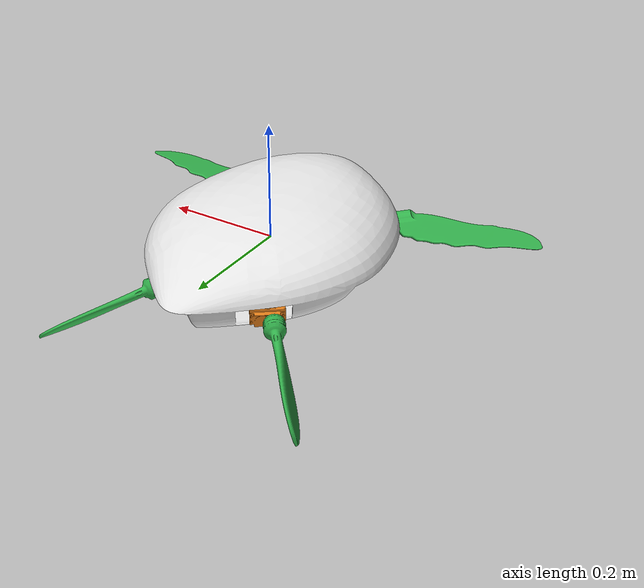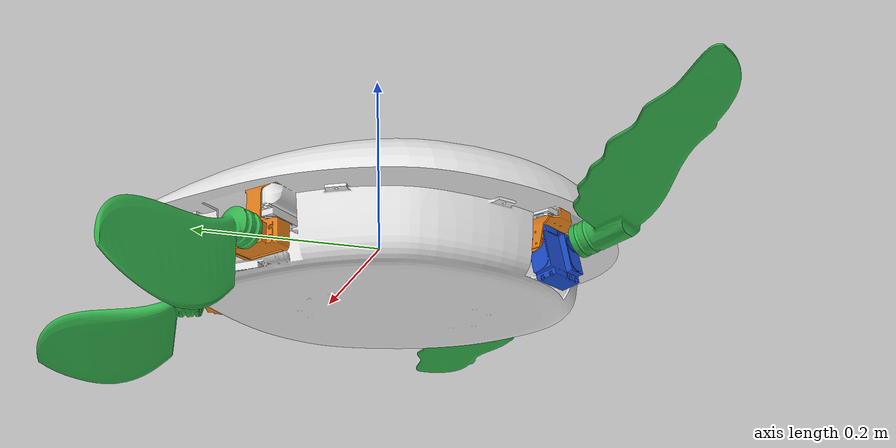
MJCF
<mujoco model="turtle">
  <compiler angle="radian" meshdir="./assets/" />
  <option timestep="0.001" iterations="100" solver="Newton" tolerance="1e-10" />
  <size njmax="500" nconmax="100" />

  <default>
    <default class="turtle">
      <geom friction="0.6" margin="0.001" condim="1" />
      <joint damping="10.0" armature="0.1" frictionloss="0.5" />
      <default class="leg_joint">
        <joint axis="0 0 1" range="-3.14 3.14" />
      </default>
      <default class="thigh_joint">
        <joint range="-3.14 3.14" />
      </default>
      <default class="calf_joint">
        <joint range="-3.14 3.14" />
      </default>
      <default class="visual">
        <geom type="mesh" contype="0" conaffinity="0" group="1" density="0" />
      </default>
      <default class="collision">
        <geom group="3" />
        <default class="capsule_small">
          <geom type="box" size="0.02 0.02 0.02" />
        </default>
        <default class="capsule_large">
          <geom type="box" size="0.02 0.02 0.02" />
        </default>
        <default class="base_box">
          <geom type="box" size="0.15 0.15 0.069" />
        </default>
        <default class="foot">
          <geom type="box" size="0.05 0.07 0.001" pos="0 -0.07 0" />
        </default>
      </default>
    </default>
  </default>

  <asset>
    <mesh name="base_link" content_type="model/stl" file="base_link.STL" />
    <mesh name="link1" content_type="model/stl" file="link1.STL" />
    <mesh name="link2" content_type="model/stl" file="link2.STL" />
    <mesh name="link3" content_type="model/stl" file="link3.STL" />
    <mesh name="link4" content_type="model/stl" file="link4.STL" />
    <mesh name="link5" content_type="model/stl" file="link5.STL" />
    <mesh name="link6" content_type="model/stl" file="link6.STL" />
    <mesh name="link7" content_type="model/stl" file="link7.STL" />
    <mesh name="link8" content_type="model/stl" file="link8.STL" />
    <mesh name="link9" content_type="model/stl" file="link9.STL" />
    <mesh name="link10" content_type="model/stl" file="link10.STL" />
  </asset>

  <worldbody>
    <light name="spotlight" mode="targetbodycom" target="base" pos="0 -1 2" />
    <body name="base" childclass="turtle">
      <camera name="tracking" mode="trackcom" pos="0 -1 0.8" xyaxes="1 0 0 0 1 1" />
      <inertial pos="0 0 0" mass="1.0" diaginertia="0.01 0.01 0.01" />
      <freejoint />
      <site name="imu" pos="0 0 0" size="0.01" group="5" />
      <site name="head" pos="0.2 0 0" size="0.01" group="5" />
      <geom class="visual" mesh="base_link" rgba="0.89412 0.89412 0.89412 1" />
      <geom type="mesh" mesh="base_link" group="3" />
      <body name="link1" pos="0.097388 -0.14699 0" quat="0.156945 0 0 -0.987607">
        <inertial pos="-0.0086132 0.0041463 0.0062549" quat="0.317872 0.355925 0.562736 0.674983"
          mass="0.014019" diaginertia="7.74111e-06 6.34788e-06 3.97441e-06" />
        <joint name="joint1" class="leg_joint" pos="0 0 0"
          actuatorfrcrange="-100 100" range="-0.502 0.879" />
        <geom class="visual" mesh="link1" rgba="0.9 0.5 0.1 1" />
        <body name="link2" pos="-0.0041022 0.0062787 -0.022095"
          quat="0.995951 0.0752598 0.0491699 -1.34309e-07">
          <inertial pos="-6.1964e-05 -0.0023986 -0.0094406"
            quat="0.449436 -0.11108 0.0599329 0.884351" mass="0.069548"
            diaginertia="2.17375e-05 1.85727e-05 1.00748e-05" />
          <joint name="joint2" class="thigh_joint" pos="0 0 0" axis="0.837159 0.546959 0"
            actuatorfrcrange="-100 100" range="-0.973 0.126" />
          <geom class="visual" mesh="link2" rgba="0.1 0.3 0.8 1" />
          <body name="link3" pos="0.006714 0.0043866 0"
            quat="0.997208 -0.0395713 0.060568 -0.0184833">
            <inertial pos="-0.105472 0.0699603 -0.0292503"
              quat="0.190864 0.63175 -0.0589225 0.748993" mass="0.182212"
              diaginertia="0.00108297 0.00101803 7.453e-05" />
            <joint name="joint3" class="calf_joint" pos="0 0 0" axis="-0.529938 0.811107 -0.247529"
              actuatorfrcrange="-100 100" range="-1.44 0.4" />
            <geom class="visual" mesh="link3" rgba="0.2 0.7 0.3 1" />
            <geom type="mesh" mesh="link3" group="3" friction="2.0 0.02 0.01" condim="6" solimp="0.015 1 0.031" />
            <site name="end_leg1" pos="0 0 -0.22" size="0.01" group="5" />
          </body>
        </body>
      </body>
      <body name="link4" pos="-0.097388 -0.14699 0" quat="0.0718843 0 0 -0.997413">
        <inertial pos="0.00945099 -0.00143479 0.00625487" quat="0.642727 0.738738 0.104452 0.173949"
          mass="0.014019" diaginertia="7.74106e-06 6.34788e-06 3.97441e-06" />
        <joint name="joint4" class="leg_joint" pos="0 0 0"
          actuatorfrcrange="-100 100" range="-0.722 0.722" />
        <geom class="visual" mesh="link4" rgba="0.9 0.5 0.1 1" />
        <body name="link5" pos="0.006929 0.0028705 -0.022095"
          quat="0.989092 0.0563725 -0.136083 -2.55851e-07">
          <inertial pos="-0.000281988 -0.00159307 -0.00960547"
            quat="0.983141 -0.01178 0.0676199 0.169474" mass="0.0695483"
            diaginertia="2.17376e-05 1.8573e-05 1.00746e-05" />
          <joint name="joint5" class="thigh_joint" pos="0 0 0" axis="-0.38273 0.92386 0"
            actuatorfrcrange="-100 100" range="0.126 1.32" />
          <geom class="visual" mesh="link5" rgba="0.1 0.3 0.8 1" />
          <body name="link6" pos="0.057826 0.032637 -0.0089085"
            quat="0.999811 0.0178174 0.00738118 -0.00260652">
            <inertial pos="0.0685729 -0.0254331 -0.00175279"
              quat="0.139658 0.721782 -0.0254878 0.677405" mass="0.182228"
              diaginertia="0.00108309 0.00101814 7.45379e-05" />
            <joint name="joint6" class="calf_joint" pos="0 0 0" axis="0.915537 0.379279 -0.13394"
              actuatorfrcrange="-100 100" range="-0.345 1.6" />
            <geom class="visual" mesh="link6" rgba="0.2 0.7 0.3 1" />
            <geom type="mesh" mesh="link6" group="3" friction="2.0 0.02 0.01" condim="6" solimp="0.015 1 0.031" />
            <site name="end_leg2" pos="0 0 -0.22" size="0.01" group="5" />
          </body>
        </body>
      </body>
      <body name="link7" pos="-0.082932 0.13664 0" quat="0.000996327 0 0 1">
        <inertial pos="0.0092671 -0.0132743 -0.0340547" quat="0.413574 0.21531 0.674467 0.572444"
          mass="0.0436895" diaginertia="1.27247e-05 1.22194e-05 6.79083e-06" />
        <joint name="joint7" class="leg_joint" pos="0 0 0"
          actuatorfrcrange="-100 100" range="-1.04 0.84" />
        <geom class="visual" mesh="link7" rgba="0.9 0.5 0.1 1" />
        <body name="link8" pos="0.0073704 0.0055061 -0.040945"
          quat="0.521581 0.510639 -0.683521 6.6209e-06">
          <inertial pos="0.0430833 -0.123511 0.00876104" quat="0.511493 0.570328 -0.362187 0.530963"
            mass="0.12896" diaginertia="0.000421669 0.000360954 6.53977e-05" />
          <joint name="joint8" class="thigh_joint" pos="0 0 0" axis="0.59849 -0.80113 0"
            actuatorfrcrange="-100 100" range="-1.63 1.26" />
          <geom class="visual" mesh="link8" rgba="0.2 0.7 0.3 1" />
          <geom type="mesh" mesh="link8" group="3" friction="2.0 0.02 0.01" condim="6" solimp="0.015 1 0.031" />
          <site name="end_leg3" pos="0 0 -0.22" size="0.01" group="5" />
        </body>
      </body>
      <body name="link9" pos="0.082932 0.13664 0" quat="0.277986 0 0 -0.960585">
        <inertial pos="-0.012138 -0.0107123 -0.0340547" quat="0.695276 0.617537 0.342612 0.133626"
          mass="0.0436896" diaginertia="1.27247e-05 1.22194e-05 6.79083e-06" />
        <joint name="joint9" class="leg_joint" pos="0 0 0"
          actuatorfrcrange="-100 100" range="-1.22 0.691" />
        <geom class="visual" mesh="link9" rgba="0.9 0.5 0.1 1" />
        <body name="link10" pos="-0.05229 -0.031301 -0.040945"
          quat="0.389294 0.709864 0.586978 -8.9408e-06">
          <inertial pos="-0.0241032 -0.0720448 -0.00412934"
            quat="0.606437 0.405935 -0.596477 0.334165" mass="0.128964"
            diaginertia="0.000421691 0.000360957 6.54165e-05" />
          <joint name="joint10" class="thigh_joint" pos="0 0 0" axis="-0.770658 -0.637249 0"
            actuatorfrcrange="-100 100" range="-0.597 2.39" />
          <geom class="visual" mesh="link10" rgba="0.2 0.7 0.3 1" />
          <geom type="mesh" mesh="link10" group="3" friction="2.0 0.02 0.01" condim="6" solimp="0.015 1 0.031" />
          <site name="end_leg4" pos="0 0 -0.22" size="0.01" group="5" />
        </body>
      </body>
    </body>
  </worldbody>
  <actuator>
    <position name="joint1_motor" joint="joint1" kp="20" />
    <position name="joint2_motor" joint="joint2" kp="20" />
    <position name="joint3_motor" joint="joint3" kp="20" />
    <position name="joint4_motor" joint="joint4" kp="20" />
    <position name="joint5_motor" joint="joint5" kp="20" />
    <position name="joint6_motor" joint="joint6" kp="20" />
    <position name="joint7_motor" joint="joint7" kp="20" />
    <position name="joint8_motor" joint="joint8" kp="20" />
    <position name="joint9_motor" joint="joint9" kp="20" />
    <position name="joint10_motor" joint="joint10" kp="20" />
  </actuator>
</mujoco>
